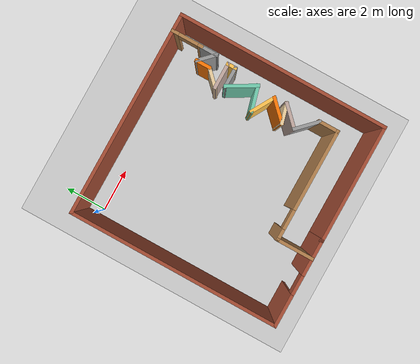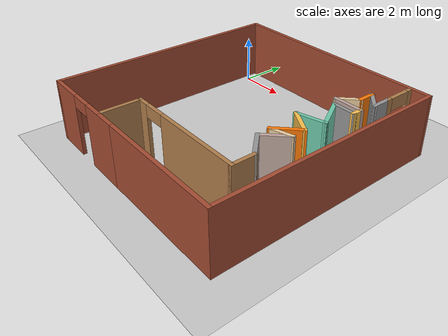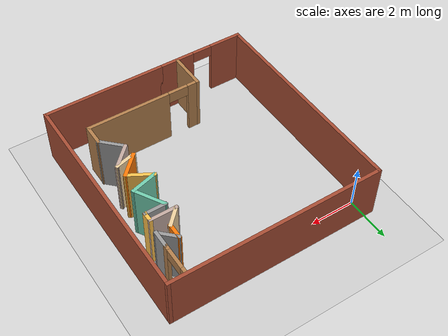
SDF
<sdf version="1.7">
 <world name="default">
  <light name="sun" type="directional">
   <pose>0 0 10 0 -0 0</pose>
   <diffuse>0.8 0.8 0.8 1</diffuse>
   <specular>0.2 0.2 0.2 1</specular>
   <attenuation>
    <range>1000</range>
    <constant>0.9</constant>
    <linear>0.01</linear>
    <quadratic>0.001</quadratic>
   </attenuation>
   <direction>-0.5 0.1 -0.9</direction>
   <spot><inner_angle>0</inner_angle><outer_angle>0</outer_angle><falloff>0</falloff></spot>
  </light>
  <model name="ground_plane">
   <static>1</static>
   <link name="link">
    <collision name="collision">
     <geometry><plane><normal>0 0 1</normal><size>100 100</size></plane></geometry>
     <surface>
      <contact><collide_bitmask>65535</collide_bitmask></contact>
      <friction><ode><mu>100</mu><mu2>50</mu2></ode></friction>
     </surface>
    </collision>
    <visual name="visual">
     <cast_shadows>0</cast_shadows>
     <geometry><plane><normal>0 0 1</normal><size>100 100</size></plane></geometry>
     <material>
      <script><uri>file://media/materials/scripts/gazebo.material</uri><name>Gazebo/Grey</name></script>
     </material>
    </visual>
   </link>
  </model>
  <gravity>0 0 -9.8</gravity>
  <magnetic_field>6e-06 2.3e-05 -4.2e-05</magnetic_field>
  <atmosphere type="adiabatic"/>
  <physics type="ode">
   <max_step_size>0.001</max_step_size>
   <real_time_factor>1</real_time_factor>
   <real_time_update_rate>1000</real_time_update_rate>
  </physics>
  <scene><ambient>0.4 0.4 0.4 1</ambient><background>0.7 0.7 0.7 1</background><shadows>1</shadows></scene>
  <audio><device>default</device></audio>
  <spherical_coordinates>
   <surface_model>EARTH_WGS84</surface_model>
   <latitude_deg>0</latitude_deg>
   <longitude_deg>0</longitude_deg>
   <elevation>0</elevation>
   <heading_deg>0</heading_deg>
  </spherical_coordinates>
  <model name="polygon2">
   <pose>4.32192 -4.07814 0 0 -0 0</pose>
   <link name="Wall_1">
    <collision name="Wall_1_Collision">
     <geometry><box><size>5.5 0.15 2.5</size></box></geometry>
     <pose>0 0 1.25 0 -0 0</pose>
    </collision>
    <visual name="Wall_1_Visual">
     <pose>0 0 1.25 0 -0 0</pose>
     <geometry><box><size>5.5 0.15 2.5</size></box></geometry>
     <material>
      <script><uri>file://media/materials/scripts/gazebo.material</uri><name>Gazebo/Bricks</name></script>
      <ambient>1 1 1 1</ambient>
     </material>
     <meta><layer>0</layer></meta>
    </visual>
    <pose>2 -4.8 0 0 -0 0</pose>
   </link>
   <link name="Wall_10">
    <collision name="Wall_10_Collision">
     <geometry><box><size>1.25 0.15 2.5</size></box></geometry>
     <pose>0 0 1.25 0 -0 0</pose>
    </collision>
    <visual name="Wall_10_Visual">
     <pose>0 0 1.25 0 -0 0</pose>
     <geometry><box><size>1.25 0.15 2.5</size></box></geometry>
     <material>
      <script><uri>file://media/materials/scripts/gazebo.material</uri><name>Gazebo/Grey</name></script>
      <ambient>1 1 1 1</ambient>
     </material>
     <meta><layer>0</layer></meta>
    </visual>
    <pose>3.18831 -1.94347 0 0 -0 2.35619</pose>
   </link>
   <link name="Wall_11">
    <collision name="Wall_11_Collision">
     <geometry><box><size>1.25 0.15 2.5</size></box></geometry>
     <pose>0 0 1.25 0 -0 0</pose>
    </collision>
    <visual name="Wall_11_Visual">
     <pose>0 0 1.25 0 -0 0</pose>
     <geometry><box><size>1.25 0.15 2.5</size></box></geometry>
     <material>
      <script><uri>file://media/materials/scripts/gazebo.material</uri><name>Gazebo/Grey</name></script>
      <ambient>0.760784 0.662745 0.627451 1</ambient>
     </material>
     <meta><layer>0</layer></meta>
    </visual>
    <pose>3.18831 -1.16565 0 0 -0 0.785398</pose>
   </link>
   <link name="Wall_12">
    <collision name="Wall_12_Collision">
     <geometry><box><size>1 0.15 2.5</size></box></geometry>
     <pose>0 0 1.25 0 -0 0</pose>
    </collision>
    <visual name="Wall_12_Visual">
     <pose>0 0 1.25 0 -0 0</pose>
     <geometry><box><size>1 0.15 2.5</size></box></geometry>
     <material>
      <script><uri>file://media/materials/scripts/gazebo.material</uri><name>Gazebo/Grey</name></script>
      <ambient>0.921569 0.807843 0.615686 1</ambient>
     </material>
     <meta><layer>0</layer></meta>
    </visual>
    <pose>3.1667 -0.886741 0 0 -0 -2.87979</pose>
   </link>
   <link name="Wall_13">
    <collision name="Wall_13_Collision">
     <geometry><box><size>1.25 0.15 2.5</size></box></geometry>
     <pose>0 0 1.25 0 -0 0</pose>
    </collision>
    <visual name="Wall_13_Visual">
     <pose>0 0 1.25 0 -0 0</pose>
     <geometry><box><size>1.25 0.15 2.5</size></box></geometry>
     <material>
      <script><uri>file://media/materials/scripts/gazebo.material</uri><name>Gazebo/Grey</name></script>
      <ambient>0.996078 0.47451 0.0196078 1</ambient>
     </material>
     <meta><layer>0</layer></meta>
    </visual>
    <pose>3.14509 -0.60783 0 0 -0 0.785398</pose>
   </link>
   <link name="Wall_14">
    <collision name="Wall_14_Collision">
     <geometry><box><size>1.25 0.15 2.5</size></box></geometry>
     <pose>0 0 1.25 0 -0 0</pose>
    </collision>
    <visual name="Wall_14_Visual">
     <pose>0 0 1.25 0 -0 0</pose>
     <geometry><box><size>1.25 0.15 2.5</size></box></geometry>
     <material>
      <script><uri>file://media/materials/scripts/gazebo.material</uri><name>Gazebo/Grey</name></script>
      <ambient>1 0.764706 0.305882 1</ambient>
     </material>
     <meta><layer>0</layer></meta>
    </visual>
    <pose>3.05768 0.056079 0 0 -0 2.61799</pose>
   </link>
   <link name="Wall_15">
    <collision name="Wall_15_Collision">
     <geometry><box><size>1.25 0.15 2.5</size></box></geometry>
     <pose>0 0 1.25 0 -0 0</pose>
    </collision>
    <visual name="Wall_15_Visual">
     <pose>0 0 1.25 0 -0 0</pose>
     <geometry><box><size>1.25 0.15 2.5</size></box></geometry>
     <material>
      <script><uri>file://media/materials/scripts/gazebo.material</uri><name>Gazebo/Grey</name></script>
      <ambient>0.435294 0.796078 0.67451 1</ambient>
     </material>
     <meta><layer>0</layer></meta>
    </visual>
    <pose>3.11263 0.473429 0 0 -0 0.261799</pose>
   </link>
   <link name="Wall_16">
    <collision name="Wall_16_Collision">
     <geometry><box><size>1.5 0.15 2.5</size></box></geometry>
     <pose>0 0 1.25 0 -0 0</pose>
    </collision>
    <visual name="Wall_16_Visual">
     <pose>0 0 1.25 0 -0 0</pose>
     <geometry><box><size>1.5 0.15 2.5</size></box></geometry>
     <material>
      <script><uri>file://media/materials/scripts/gazebo.material</uri><name>Gazebo/Grey</name></script>
      <ambient>0.435294 0.796078 0.67451 1</ambient>
     </material>
     <meta><layer>0</layer></meta>
    </visual>
    <pose>3.30639 1.20035 0 0 -0 2.0944</pose>
   </link>
   <link name="Wall_17">
    <collision name="Wall_17_Collision">
     <geometry><box><size>1 0.15 2.5</size></box></geometry>
     <pose>0 0 1.25 0 -0 0</pose>
    </collision>
    <visual name="Wall_17_Visual">
     <pose>0 0 1.25 0 -0 0</pose>
     <geometry><box><size>1 0.15 2.5</size></box></geometry>
     <material>
      <script><uri>file://media/materials/scripts/gazebo.material</uri><name>Gazebo/Grey</name></script>
      <ambient>1 1 1 1</ambient>
     </material>
     <meta><layer>0</layer></meta>
    </visual>
    <pose>3.39389 1.78491 0 0 -0 0</pose>
   </link>
   <link name="Wall_18">
    <collision name="Wall_18_Collision">
     <geometry><box><size>0.5 0.15 2.5</size></box></geometry>
     <pose>0 0 1.25 0 -0 0</pose>
    </collision>
    <visual name="Wall_18_Visual">
     <pose>0 0 1.25 0 -0 0</pose>
     <geometry><box><size>0.5 0.15 2.5</size></box></geometry>
     <material>
      <script><uri>file://media/materials/scripts/gazebo.material</uri><name>Gazebo/Grey</name></script>
      <ambient>1 0.764706 0.305882 1</ambient>
     </material>
     <meta><layer>0</layer></meta>
    </visual>
    <pose>3.81889 1.95991 0 0 -0 1.5708</pose>
   </link>
   <link name="Wall_19">
    <collision name="Wall_19_Collision">
     <geometry><box><size>1.25 0.15 2.5</size></box></geometry>
     <pose>0 0 1.25 0 -0 0</pose>
    </collision>
    <visual name="Wall_19_Visual">
     <pose>0 0 1.25 0 -0 0</pose>
     <geometry><box><size>1.25 0.15 2.5</size></box></geometry>
     <material>
      <script><uri>file://media/materials/scripts/gazebo.material</uri><name>Gazebo/Grey</name></script>
      <ambient>0.760784 0.662745 0.627451 1</ambient>
     </material>
     <meta><layer>0</layer></meta>
    </visual>
    <pose>3.26889 2.13491 0 0 -0 3.14159</pose>
   </link>
   <link name="Wall_2">
    <collision name="Wall_2_Collision">
     <geometry><box><size>9.75 0.15 2.5</size></box></geometry>
     <pose>0 0 1.25 0 -0 0</pose>
    </collision>
    <visual name="Wall_2_Visual">
     <pose>0 0 1.25 0 -0 0</pose>
     <geometry><box><size>9.75 0.15 2.5</size></box></geometry>
     <material>
      <script><uri>file://media/materials/scripts/gazebo.material</uri><name>Gazebo/Bricks</name></script>
      <ambient>1 1 1 1</ambient>
     </material>
     <meta><layer>0</layer></meta>
    </visual>
    <pose>4.675 0 0 0 -0 1.5708</pose>
   </link>
   <link name="Wall_20">
    <collision name="Wall_20_Collision">
     <geometry><box><size>1 0.15 2.5</size></box></geometry>
     <pose>0 0 1.25 0 -0 0</pose>
    </collision>
    <visual name="Wall_20_Visual">
     <pose>0 0 1.25 0 -0 0</pose>
     <geometry><box><size>1 0.15 2.5</size></box></geometry>
     <material>
      <script><uri>file://media/materials/scripts/gazebo.material</uri><name>Gazebo/Grey</name></script>
      <ambient>0.921569 0.807843 0.615686 1</ambient>
     </material>
     <meta><layer>0</layer></meta>
    </visual>
    <pose>3.01941 2.43543 0 0 -0 0.785398</pose>
   </link>
   <link name="Wall_21">
    <collision name="Wall_21_Collision">
     <geometry><box><size>0.75 0.15 2.5</size></box></geometry>
     <pose>0 0 1.25 0 -0 0</pose>
    </collision>
    <visual name="Wall_21_Visual">
     <pose>0 0 1.25 0 -0 0</pose>
     <geometry><box><size>0.75 0.15 2.5</size></box></geometry>
     <material>
      <script><uri>file://media/materials/scripts/gazebo.material</uri><name>Gazebo/Grey</name></script>
      <ambient>0.996078 0.47451 0.0196078 1</ambient>
     </material>
     <meta><layer>0</layer></meta>
    </visual>
    <pose>3.31993 3.03595 0 0 -0 1.5708</pose>
   </link>
   <link name="Wall_22">
    <collision name="Wall_22_Collision">
     <geometry><box><size>1 0.15 2.5</size></box></geometry>
     <pose>0 0 1.25 0 -0 0</pose>
    </collision>
    <visual name="Wall_22_Visual">
     <pose>0 0 1.25 0 -0 0</pose>
     <geometry><box><size>1 0.15 2.5</size></box></geometry>
     <material>
      <script><uri>file://media/materials/scripts/gazebo.material</uri><name>Gazebo/Grey</name></script>
      <ambient>1 1 1 1</ambient>
     </material>
     <meta><layer>0</layer></meta>
    </visual>
    <pose>3.62045 3.03543 0 0 -0 -0.785398</pose>
   </link>
   <link name="Wall_23">
    <collision name="Wall_23_Collision">
     <geometry><box><size>0.840225 0.15 2.5</size></box></geometry>
     <pose>0 0 1.25 0 -0 0</pose>
    </collision>
    <visual name="Wall_23_Visual">
     <pose>0 0 1.25 0 -0 0</pose>
     <geometry><box><size>0.840225 0.15 2.5</size></box></geometry>
     <material>
      <script><uri>file://media/materials/scripts/gazebo.material</uri><name>Gazebo/Grey</name></script>
      <ambient>0 0 0 1</ambient>
     </material>
     <meta><layer>0</layer></meta>
    </visual>
    <pose>3.92097 3.08003 0 0 -0 1.5708</pose>
   </link>
   <link name="Wall_24">
    <pose>3.92097 4.11142 0 0 -0 1.5708</pose>
    <visual name="Wall_24_Visual_0">
     <pose>-0.625398 0 1.25 0 -0 0</pose>
     <geometry><box><size>0.249204 0.15 2.5</size></box></geometry>
     <material>
      <script><uri>file://media/materials/scripts/gazebo.material</uri><name>Gazebo/Wood</name></script>
      <ambient>1 1 1 1</ambient>
     </material>
     <meta><layer>0</layer></meta>
    </visual>
    <collision name="Wall_24_Collision_0">
     <geometry><box><size>0.249204 0.15 2.5</size></box></geometry>
     <pose>-0.625398 0 1.25 0 -0 0</pose>
    </collision>
    <visual name="Wall_24_Visual_1">
     <pose>0.574602 0 1.25 0 -0 0</pose>
     <geometry><box><size>0.350796 0.15 2.5</size></box></geometry>
     <material>
      <script><uri>file://media/materials/scripts/gazebo.material</uri><name>Gazebo/Wood</name></script>
      <ambient>1 1 1 1</ambient>
     </material>
     <meta><layer>0</layer></meta>
    </visual>
    <collision name="Wall_24_Collision_1">
     <geometry><box><size>0.350796 0.15 2.5</size></box></geometry>
     <pose>0.574602 0 1.25 0 -0 0</pose>
    </collision>
    <visual name="Wall_24_Visual_2">
     <pose>-0.050796 0 2.25 0 -0 0</pose>
     <geometry><box><size>0.9 0.15 0.5</size></box></geometry>
     <material>
      <script><uri>file://media/materials/scripts/gazebo.material</uri><name>Gazebo/Wood</name></script>
      <ambient>1 1 1 1</ambient>
     </material>
     <meta><layer>0</layer></meta>
    </visual>
    <collision name="Wall_24_Collision_2">
     <geometry><box><size>0.9 0.15 0.5</size></box></geometry>
     <pose>-0.050796 0 2.25 0 -0 0</pose>
    </collision>
   </link>
   <link name="Wall_3">
    <collision name="Wall_3_Collision">
     <geometry><box><size>9.5 0.15 2.5</size></box></geometry>
     <pose>0 0 1.25 0 -0 0</pose>
    </collision>
    <visual name="Wall_3_Visual">
     <pose>0 0 1.25 0 -0 0</pose>
     <geometry><box><size>9.5 0.15 2.5</size></box></geometry>
     <material>
      <script><uri>file://media/materials/scripts/gazebo.material</uri><name>Gazebo/Bricks</name></script>
      <ambient>1 1 1 1</ambient>
     </material>
     <meta><layer>0</layer></meta>
    </visual>
    <pose>-0 4.8 0 0 -0 3.14159</pose>
   </link>
   <link name="Wall_4">
    <collision name="Wall_4_Collision">
     <geometry><box><size>9.75 0.15 2.5</size></box></geometry>
     <pose>0 0 1.25 0 -0 0</pose>
    </collision>
    <visual name="Wall_4_Visual">
     <pose>0 0 1.25 0 -0 0</pose>
     <geometry><box><size>9.75 0.15 2.5</size></box></geometry>
     <material>
      <script><uri>file://media/materials/scripts/gazebo.material</uri><name>Gazebo/Bricks</name></script>
      <ambient>1 1 1 1</ambient>
     </material>
     <meta><layer>0</layer></meta>
    </visual>
    <pose>-4.675 0 0 0 -0 -1.5708</pose>
   </link>
   <link name="Wall_5">
    <pose>-2.675 -4.8 0 0 -0 0</pose>
    <visual name="Wall_5_Visual_0">
     <pose>-1.31196 0 1.25 0 -0 0</pose>
     <geometry><box><size>1.52608 0.15 2.5</size></box></geometry>
     <material>
      <script><uri>file://media/materials/scripts/gazebo.material</uri><name>Gazebo/Bricks</name></script>
      <ambient>1 1 1 1</ambient>
     </material>
     <meta><layer>0</layer></meta>
    </visual>
    <collision name="Wall_5_Collision_0">
     <geometry><box><size>1.52608 0.15 2.5</size></box></geometry>
     <pose>-1.31196 0 1.25 0 -0 0</pose>
    </collision>
    <visual name="Wall_5_Visual_1">
     <pose>1.21304 0 1.25 0 -0 0</pose>
     <geometry><box><size>1.72392 0.15 2.5</size></box></geometry>
     <material>
      <script><uri>file://media/materials/scripts/gazebo.material</uri><name>Gazebo/Bricks</name></script>
      <ambient>1 1 1 1</ambient>
     </material>
     <meta><layer>0</layer></meta>
    </visual>
    <collision name="Wall_5_Collision_1">
     <geometry><box><size>1.72392 0.15 2.5</size></box></geometry>
     <pose>1.21304 0 1.25 0 -0 0</pose>
    </collision>
    <visual name="Wall_5_Visual_2">
     <pose>-0.098919 0 2.25 0 -0 0</pose>
     <geometry><box><size>0.9 0.15 0.5</size></box></geometry>
     <material>
      <script><uri>file://media/materials/scripts/gazebo.material</uri><name>Gazebo/Bricks</name></script>
      <ambient>1 1 1 1</ambient>
     </material>
     <meta><layer>0</layer></meta>
    </visual>
    <collision name="Wall_5_Collision_2">
     <geometry><box><size>0.9 0.15 0.5</size></box></geometry>
     <pose>-0.098919 0 2.25 0 -0 0</pose>
    </collision>
   </link>
   <link name="Wall_7">
    <collision name="Wall_7_Collision">
     <geometry><box><size>1.75 0.15 2.5</size></box></geometry>
     <pose>0 0 1.25 0 -0 0</pose>
    </collision>
    <visual name="Wall_7_Visual">
     <pose>0 0 1.25 0 -0 0</pose>
     <geometry><box><size>1.75 0.15 2.5</size></box></geometry>
     <material>
      <script><uri>file://media/materials/scripts/gazebo.material</uri><name>Gazebo/Wood</name></script>
      <ambient>1 1 1 1</ambient>
     </material>
     <meta><layer>0</layer></meta>
    </visual>
    <pose>-1.52279 -3.98238 0 0 -0 1.5708</pose>
   </link>
   <link name="Wall_8">
    <pose>1.02721 -3.18238 0 0 -0 0</pose>
    <visual name="Wall_8_Visual_0">
     <pose>-2.33979 0 1.25 0 -0 0</pose>
     <geometry><box><size>0.570422 0.15 2.5</size></box></geometry>
     <material>
      <script><uri>file://media/materials/scripts/gazebo.material</uri><name>Gazebo/Wood</name></script>
      <ambient>1 1 1 1</ambient>
     </material>
     <meta><layer>0</layer></meta>
    </visual>
    <collision name="Wall_8_Collision_0">
     <geometry><box><size>0.570422 0.15 2.5</size></box></geometry>
     <pose>-2.33979 0 1.25 0 -0 0</pose>
    </collision>
    <visual name="Wall_8_Visual_1">
     <pose>0.735211 0 1.25 0 -0 0</pose>
     <geometry><box><size>3.77958 0.15 2.5</size></box></geometry>
     <material>
      <script><uri>file://media/materials/scripts/gazebo.material</uri><name>Gazebo/Wood</name></script>
      <ambient>1 1 1 1</ambient>
     </material>
     <meta><layer>0</layer></meta>
    </visual>
    <collision name="Wall_8_Collision_1">
     <geometry><box><size>3.77958 0.15 2.5</size></box></geometry>
     <pose>0.735211 0 1.25 0 -0 0</pose>
    </collision>
    <visual name="Wall_8_Visual_2">
     <pose>-1.60458 0 2.25 0 -0 0</pose>
     <geometry><box><size>0.9 0.15 0.5</size></box></geometry>
     <material>
      <script><uri>file://media/materials/scripts/gazebo.material</uri><name>Gazebo/Wood</name></script>
      <ambient>1 1 1 1</ambient>
     </material>
     <meta><layer>0</layer></meta>
    </visual>
    <collision name="Wall_8_Collision_2">
     <geometry><box><size>0.9 0.15 0.5</size></box></geometry>
     <pose>-1.60458 0 2.25 0 -0 0</pose>
    </collision>
   </link>
   <link name="Wall_9">
    <collision name="Wall_9_Collision">
     <geometry><box><size>1 0.15 2.5</size></box></geometry>
     <pose>0 0 1.25 0 -0 0</pose>
    </collision>
    <visual name="Wall_9_Visual">
     <pose>0 0 1.25 0 -0 0</pose>
     <geometry><box><size>1 0.15 2.5</size></box></geometry>
     <material>
      <script><uri>file://media/materials/scripts/gazebo.material</uri><name>Gazebo/Wood</name></script>
      <ambient>1 1 1 1</ambient>
     </material>
     <meta><layer>0</layer></meta>
    </visual>
    <pose>3.57721 -2.75738 0 0 -0 1.5708</pose>
   </link>
   <static>1</static>
  </model>
 </world>
</sdf>
